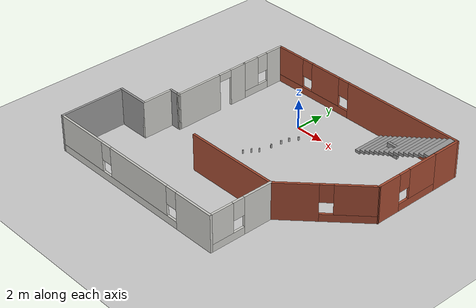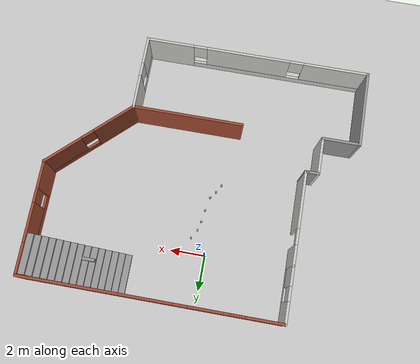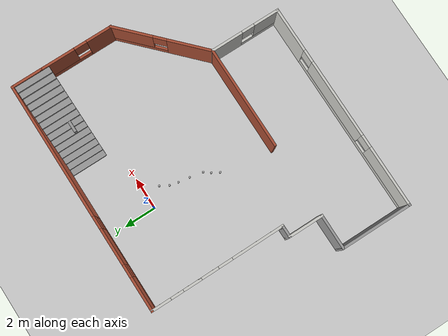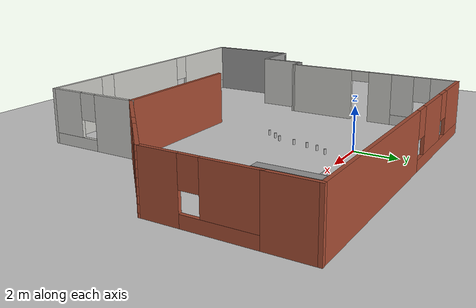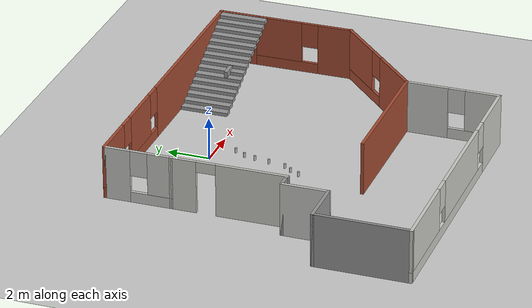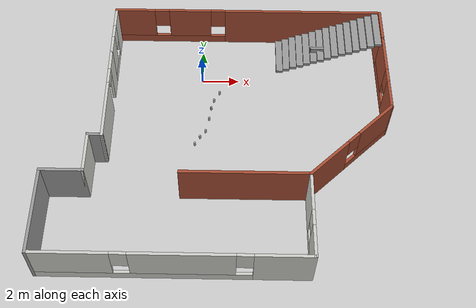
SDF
<sdf version="1.7">
 <world name="default">
  <model name="some_house">
   <pose>1.0882 -4.40068 0 0 -0 0</pose>
   <link name="Stairs_1">
    <visual name="Stairs_1_Visual_0">
     <pose>3.20774 6.21774 0.083333 0 -0 1.5708</pose>
     <geometry><box><size>2.24008 0.369439 0.166667</size></box></geometry>
     <material>
      <script><uri>file://media/materials/scripts/gazebo.material</uri><name>Gazebo/Grey</name></script>
      <ambient>1 1 1 1</ambient>
     </material>
     <meta><layer>0</layer></meta>
    </visual>
    <collision name="Stairs_1_Collision_0">
     <geometry><box><size>2.24008 0.369439 0.166667</size></box></geometry>
     <pose>3.20774 6.21774 0.083333 0 -0 1.5708</pose>
    </collision>
    <visual name="Stairs_1_Visual_1">
     <pose>3.57718 6.21774 0.25 0 -0 1.5708</pose>
     <geometry><box><size>2.24008 0.369439 0.166667</size></box></geometry>
     <material>
      <script><uri>file://media/materials/scripts/gazebo.material</uri><name>Gazebo/Grey</name></script>
      <ambient>1 1 1 1</ambient>
     </material>
     <meta><layer>0</layer></meta>
    </visual>
    <collision name="Stairs_1_Collision_1">
     <geometry><box><size>2.24008 0.369439 0.166667</size></box></geometry>
     <pose>3.57718 6.21774 0.25 0 -0 1.5708</pose>
    </collision>
    <visual name="Stairs_1_Visual_2">
     <pose>3.94662 6.21774 0.416667 0 -0 1.5708</pose>
     <geometry><box><size>2.24008 0.369439 0.166667</size></box></geometry>
     <material>
      <script><uri>file://media/materials/scripts/gazebo.material</uri><name>Gazebo/Grey</name></script>
      <ambient>1 1 1 1</ambient>
     </material>
     <meta><layer>0</layer></meta>
    </visual>
    <collision name="Stairs_1_Collision_2">
     <geometry><box><size>2.24008 0.369439 0.166667</size></box></geometry>
     <pose>3.94662 6.21774 0.416667 0 -0 1.5708</pose>
    </collision>
    <visual name="Stairs_1_Visual_3">
     <pose>4.31606 6.21774 0.583333 0 -0 1.5708</pose>
     <geometry><box><size>2.24008 0.369439 0.166667</size></box></geometry>
     <material>
      <script><uri>file://media/materials/scripts/gazebo.material</uri><name>Gazebo/Grey</name></script>
      <ambient>1 1 1 1</ambient>
     </material>
     <meta><layer>0</layer></meta>
    </visual>
    <collision name="Stairs_1_Collision_3">
     <geometry><box><size>2.24008 0.369439 0.166667</size></box></geometry>
     <pose>4.31606 6.21774 0.583333 0 -0 1.5708</pose>
    </collision>
    <visual name="Stairs_1_Visual_4">
     <pose>4.6855 6.21774 0.75 0 -0 1.5708</pose>
     <geometry><box><size>2.24008 0.369439 0.166667</size></box></geometry>
     <material>
      <script><uri>file://media/materials/scripts/gazebo.material</uri><name>Gazebo/Grey</name></script>
      <ambient>1 1 1 1</ambient>
     </material>
     <meta><layer>0</layer></meta>
    </visual>
    <collision name="Stairs_1_Collision_4">
     <geometry><box><size>2.24008 0.369439 0.166667</size></box></geometry>
     <pose>4.6855 6.21774 0.75 0 -0 1.5708</pose>
    </collision>
    <visual name="Stairs_1_Visual_5">
     <pose>5.05494 6.21774 0.916667 0 -0 1.5708</pose>
     <geometry><box><size>2.24008 0.369439 0.166667</size></box></geometry>
     <material>
      <script><uri>file://media/materials/scripts/gazebo.material</uri><name>Gazebo/Grey</name></script>
      <ambient>1 1 1 1</ambient>
     </material>
     <meta><layer>0</layer></meta>
    </visual>
    <collision name="Stairs_1_Collision_5">
     <geometry><box><size>2.24008 0.369439 0.166667</size></box></geometry>
     <pose>5.05494 6.21774 0.916667 0 -0 1.5708</pose>
    </collision>
    <visual name="Stairs_1_Visual_6">
     <pose>5.42438 6.21774 1.08333 0 -0 1.5708</pose>
     <geometry><box><size>2.24008 0.369439 0.166667</size></box></geometry>
     <material>
      <script><uri>file://media/materials/scripts/gazebo.material</uri><name>Gazebo/Grey</name></script>
      <ambient>1 1 1 1</ambient>
     </material>
     <meta><layer>0</layer></meta>
    </visual>
    <collision name="Stairs_1_Collision_6">
     <geometry><box><size>2.24008 0.369439 0.166667</size></box></geometry>
     <pose>5.42438 6.21774 1.08333 0 -0 1.5708</pose>
    </collision>
    <visual name="Stairs_1_Visual_7">
     <pose>5.79382 6.21774 1.25 0 -0 1.5708</pose>
     <geometry><box><size>2.24008 0.369439 0.166667</size></box></geometry>
     <material>
      <script><uri>file://media/materials/scripts/gazebo.material</uri><name>Gazebo/Grey</name></script>
      <ambient>1 1 1 1</ambient>
     </material>
     <meta><layer>0</layer></meta>
    </visual>
    <collision name="Stairs_1_Collision_7">
     <geometry><box><size>2.24008 0.369439 0.166667</size></box></geometry>
     <pose>5.79382 6.21774 1.25 0 -0 1.5708</pose>
    </collision>
    <visual name="Stairs_1_Visual_8">
     <pose>6.16326 6.21774 1.41667 0 -0 1.5708</pose>
     <geometry><box><size>2.24008 0.369439 0.166667</size></box></geometry>
     <material>
      <script><uri>file://media/materials/scripts/gazebo.material</uri><name>Gazebo/Grey</name></script>
      <ambient>1 1 1 1</ambient>
     </material>
     <meta><layer>0</layer></meta>
    </visual>
    <collision name="Stairs_1_Collision_8">
     <geometry><box><size>2.24008 0.369439 0.166667</size></box></geometry>
     <pose>6.16326 6.21774 1.41667 0 -0 1.5708</pose>
    </collision>
    <visual name="Stairs_1_Visual_9">
     <pose>6.5327 6.21774 1.58333 0 -0 1.5708</pose>
     <geometry><box><size>2.24008 0.369439 0.166667</size></box></geometry>
     <material>
      <script><uri>file://media/materials/scripts/gazebo.material</uri><name>Gazebo/Grey</name></script>
      <ambient>1 1 1 1</ambient>
     </material>
     <meta><layer>0</layer></meta>
    </visual>
    <collision name="Stairs_1_Collision_9">
     <geometry><box><size>2.24008 0.369439 0.166667</size></box></geometry>
     <pose>6.5327 6.21774 1.58333 0 -0 1.5708</pose>
    </collision>
    <visual name="Stairs_1_Visual_10">
     <pose>6.90214 6.21774 1.75 0 -0 1.5708</pose>
     <geometry><box><size>2.24008 0.369439 0.166667</size></box></geometry>
     <material>
      <script><uri>file://media/materials/scripts/gazebo.material</uri><name>Gazebo/Grey</name></script>
      <ambient>1 1 1 1</ambient>
     </material>
     <meta><layer>0</layer></meta>
    </visual>
    <collision name="Stairs_1_Collision_10">
     <geometry><box><size>2.24008 0.369439 0.166667</size></box></geometry>
     <pose>6.90214 6.21774 1.75 0 -0 1.5708</pose>
    </collision>
    <visual name="Stairs_1_Visual_11">
     <pose>7.27158 6.21774 1.91667 0 -0 1.5708</pose>
     <geometry><box><size>2.24008 0.369439 0.166667</size></box></geometry>
     <material>
      <script><uri>file://media/materials/scripts/gazebo.material</uri><name>Gazebo/Grey</name></script>
      <ambient>1 1 1 1</ambient>
     </material>
     <meta><layer>0</layer></meta>
    </visual>
    <collision name="Stairs_1_Collision_11">
     <geometry><box><size>2.24008 0.369439 0.166667</size></box></geometry>
     <pose>7.27158 6.21774 1.91667 0 -0 1.5708</pose>
    </collision>
    <visual name="Stairs_1_Visual_12">
     <pose>7.64102 6.21774 2.08333 0 -0 1.5708</pose>
     <geometry><box><size>2.24008 0.369439 0.166667</size></box></geometry>
     <material>
      <script><uri>file://media/materials/scripts/gazebo.material</uri><name>Gazebo/Grey</name></script>
      <ambient>1 1 1 1</ambient>
     </material>
     <meta><layer>0</layer></meta>
    </visual>
    <collision name="Stairs_1_Collision_12">
     <geometry><box><size>2.24008 0.369439 0.166667</size></box></geometry>
     <pose>7.64102 6.21774 2.08333 0 -0 1.5708</pose>
    </collision>
    <visual name="Stairs_1_Visual_13">
     <pose>8.01046 6.21774 2.25 0 -0 1.5708</pose>
     <geometry><box><size>2.24008 0.369439 0.166667</size></box></geometry>
     <material>
      <script><uri>file://media/materials/scripts/gazebo.material</uri><name>Gazebo/Grey</name></script>
      <ambient>1 1 1 1</ambient>
     </material>
     <meta><layer>0</layer></meta>
    </visual>
    <collision name="Stairs_1_Collision_13">
     <geometry><box><size>2.24008 0.369439 0.166667</size></box></geometry>
     <pose>8.01046 6.21774 2.25 0 -0 1.5708</pose>
    </collision>
    <visual name="Stairs_1_Visual_14">
     <pose>8.37989 6.21774 2.41667 0 -0 1.5708</pose>
     <geometry><box><size>2.24008 0.369439 0.166667</size></box></geometry>
     <material>
      <script><uri>file://media/materials/scripts/gazebo.material</uri><name>Gazebo/Grey</name></script>
      <ambient>1 1 1 1</ambient>
     </material>
     <meta><layer>0</layer></meta>
    </visual>
    <collision name="Stairs_1_Collision_14">
     <geometry><box><size>2.24008 0.369439 0.166667</size></box></geometry>
     <pose>8.37989 6.21774 2.41667 0 -0 1.5708</pose>
    </collision>
   </link>
   <link name="Wall_16">
    <pose>6.53448 -1.05 0 0 -0 0.760111</pose>
    <visual name="Wall_16_Visual_0">
     <pose>-1.66 0 1.25 0 -0 0</pose>
     <geometry><box><size>2.73288 0.15 2.5</size></box></geometry>
     <material>
      <script><uri>file://media/materials/scripts/gazebo.material</uri><name>Gazebo/Bricks</name></script>
      <ambient>1 1 1 1</ambient>
     </material>
     <meta><layer>0</layer></meta>
    </visual>
    <collision name="Wall_16_Collision_0">
     <geometry><box><size>2.73288 0.15 2.5</size></box></geometry>
     <pose>-1.66 0 1.25 0 -0 0</pose>
    </collision>
    <visual name="Wall_16_Visual_1">
     <pose>1.36644 0 0.25 0 -0 0</pose>
     <geometry><box><size>3.32001 0.15 0.5</size></box></geometry>
     <material>
      <script><uri>file://media/materials/scripts/gazebo.material</uri><name>Gazebo/Bricks</name></script>
      <ambient>1 1 1 1</ambient>
     </material>
     <meta><layer>0</layer></meta>
    </visual>
    <collision name="Wall_16_Collision_1">
     <geometry><box><size>3.32001 0.15 0.5</size></box></geometry>
     <pose>1.36644 0 0.25 0 -0 0</pose>
    </collision>
    <visual name="Wall_16_Visual_2">
     <pose>1.76644 0 1.5 0 -0 0</pose>
     <geometry><box><size>2.52 0.15 2</size></box></geometry>
     <material>
      <script><uri>file://media/materials/scripts/gazebo.material</uri><name>Gazebo/Bricks</name></script>
      <ambient>1 1 1 1</ambient>
     </material>
     <meta><layer>0</layer></meta>
    </visual>
    <collision name="Wall_16_Collision_2">
     <geometry><box><size>2.52 0.15 2</size></box></geometry>
     <pose>1.76644 0 1.5 0 -0 0</pose>
    </collision>
    <visual name="Wall_16_Visual_3">
     <pose>0.106438 0 1.9 0 -0 0</pose>
     <geometry><box><size>0.8 0.15 1.2</size></box></geometry>
     <material>
      <script><uri>file://media/materials/scripts/gazebo.material</uri><name>Gazebo/Bricks</name></script>
      <ambient>1 1 1 1</ambient>
     </material>
     <meta><layer>0</layer></meta>
    </visual>
    <collision name="Wall_16_Collision_3">
     <geometry><box><size>0.8 0.15 1.2</size></box></geometry>
     <pose>0.106438 0 1.9 0 -0 0</pose>
    </collision>
   </link>
   <link name="Wall_17">
    <pose>8.67357 3.28355 0 0 -0 1.5708</pose>
    <visual name="Wall_17_Visual_0">
     <pose>-1.53185 0 1.25 0 -0 0</pose>
     <geometry><box><size>1.68629 0.15 2.5</size></box></geometry>
     <material>
      <script><uri>file://media/materials/scripts/gazebo.material</uri><name>Gazebo/Bricks</name></script>
      <ambient>1 1 1 1</ambient>
     </material>
     <meta><layer>0</layer></meta>
    </visual>
    <collision name="Wall_17_Collision_0">
     <geometry><box><size>1.68629 0.15 2.5</size></box></geometry>
     <pose>-1.53185 0 1.25 0 -0 0</pose>
    </collision>
    <visual name="Wall_17_Visual_1">
     <pose>0.843146 0 0.25 0 -0 0</pose>
     <geometry><box><size>3.06371 0.15 0.5</size></box></geometry>
     <material>
      <script><uri>file://media/materials/scripts/gazebo.material</uri><name>Gazebo/Bricks</name></script>
      <ambient>1 1 1 1</ambient>
     </material>
     <meta><layer>0</layer></meta>
    </visual>
    <collision name="Wall_17_Collision_1">
     <geometry><box><size>3.06371 0.15 0.5</size></box></geometry>
     <pose>0.843146 0 0.25 0 -0 0</pose>
    </collision>
    <visual name="Wall_17_Visual_2">
     <pose>1.24315 0 1.5 0 -0 0</pose>
     <geometry><box><size>2.26371 0.15 2</size></box></geometry>
     <material>
      <script><uri>file://media/materials/scripts/gazebo.material</uri><name>Gazebo/Bricks</name></script>
      <ambient>1 1 1 1</ambient>
     </material>
     <meta><layer>0</layer></meta>
    </visual>
    <collision name="Wall_17_Collision_2">
     <geometry><box><size>2.26371 0.15 2</size></box></geometry>
     <pose>1.24315 0 1.5 0 -0 0</pose>
    </collision>
    <visual name="Wall_17_Visual_3">
     <pose>-0.288707 0 1.9 0 -0 0</pose>
     <geometry><box><size>0.8 0.15 1.2</size></box></geometry>
     <material>
      <script><uri>file://media/materials/scripts/gazebo.material</uri><name>Gazebo/Bricks</name></script>
      <ambient>1 1 1 1</ambient>
     </material>
     <meta><layer>0</layer></meta>
    </visual>
    <collision name="Wall_17_Collision_3">
     <geometry><box><size>0.8 0.15 1.2</size></box></geometry>
     <pose>-0.288707 0 1.9 0 -0 0</pose>
    </collision>
   </link>
   <link name="Wall_18">
    <collision name="Wall_18_Collision">
     <geometry><box><size>2 0.15 2.5</size></box></geometry>
     <pose>0 0 1.25 0 -0 0</pose>
    </collision>
    <visual name="Wall_18_Visual">
     <pose>0 0 1.25 0 -0 0</pose>
     <geometry><box><size>2 0.15 2.5</size></box></geometry>
     <material>
      <script><uri>file://media/materials/scripts/gazebo.material</uri><name>Gazebo/Bricks</name></script>
      <ambient>1 1 1 1</ambient>
     </material>
     <meta><layer>0</layer></meta>
    </visual>
    <pose>8.67357 6.50855 0 0 -0 1.5708</pose>
   </link>
   <link name="Wall_19">
    <pose>1.37357 7.43355 0 0 -0 3.14159</pose>
    <visual name="Wall_19_Visual_0">
     <pose>-3.05953 0 1.25 0 -0 0</pose>
     <geometry><box><size>8.63094 0.15 2.5</size></box></geometry>
     <material>
      <script><uri>file://media/materials/scripts/gazebo.material</uri><name>Gazebo/Bricks</name></script>
      <ambient>1 1 1 1</ambient>
     </material>
     <meta><layer>0</layer></meta>
    </visual>
    <collision name="Wall_19_Collision_0">
     <geometry><box><size>8.63094 0.15 2.5</size></box></geometry>
     <pose>-3.05953 0 1.25 0 -0 0</pose>
    </collision>
    <visual name="Wall_19_Visual_1">
     <pose>4.31547 0 0.25 0 -0 0</pose>
     <geometry><box><size>6.11906 0.15 0.5</size></box></geometry>
     <material>
      <script><uri>file://media/materials/scripts/gazebo.material</uri><name>Gazebo/Bricks</name></script>
      <ambient>1 1 1 1</ambient>
     </material>
     <meta><layer>0</layer></meta>
    </visual>
    <collision name="Wall_19_Collision_1">
     <geometry><box><size>6.11906 0.15 0.5</size></box></geometry>
     <pose>4.31547 0 0.25 0 -0 0</pose>
    </collision>
    <visual name="Wall_19_Visual_2">
     <pose>3.21359 0 1.5 0 -0 0</pose>
     <geometry><box><size>2.31531 0.15 2</size></box></geometry>
     <material>
      <script><uri>file://media/materials/scripts/gazebo.material</uri><name>Gazebo/Bricks</name></script>
      <ambient>1 1 1 1</ambient>
     </material>
     <meta><layer>0</layer></meta>
    </visual>
    <collision name="Wall_19_Collision_2">
     <geometry><box><size>2.31531 0.15 2</size></box></geometry>
     <pose>3.21359 0 1.5 0 -0 0</pose>
    </collision>
    <visual name="Wall_19_Visual_3">
     <pose>6.27312 0 1.5 0 -0 0</pose>
     <geometry><box><size>2.20375 0.15 2</size></box></geometry>
     <material>
      <script><uri>file://media/materials/scripts/gazebo.material</uri><name>Gazebo/Bricks</name></script>
      <ambient>1 1 1 1</ambient>
     </material>
     <meta><layer>0</layer></meta>
    </visual>
    <collision name="Wall_19_Collision_3">
     <geometry><box><size>2.20375 0.15 2</size></box></geometry>
     <pose>6.27312 0 1.5 0 -0 0</pose>
    </collision>
    <visual name="Wall_19_Visual_4">
     <pose>1.65594 0 1.9 0 -0 0</pose>
     <geometry><box><size>0.8 0.15 1.2</size></box></geometry>
     <material>
      <script><uri>file://media/materials/scripts/gazebo.material</uri><name>Gazebo/Bricks</name></script>
      <ambient>1 1 1 1</ambient>
     </material>
     <meta><layer>0</layer></meta>
    </visual>
    <collision name="Wall_19_Collision_4">
     <geometry><box><size>0.8 0.15 1.2</size></box></geometry>
     <pose>1.65594 0 1.9 0 -0 0</pose>
    </collision>
    <visual name="Wall_19_Visual_5">
     <pose>4.77125 0 1.9 0 -0 0</pose>
     <geometry><box><size>0.8 0.15 1.2</size></box></geometry>
     <material>
      <script><uri>file://media/materials/scripts/gazebo.material</uri><name>Gazebo/Bricks</name></script>
      <ambient>1 1 1 1</ambient>
     </material>
     <meta><layer>0</layer></meta>
    </visual>
    <collision name="Wall_19_Collision_5">
     <geometry><box><size>0.8 0.15 1.2</size></box></geometry>
     <pose>4.77125 0 1.9 0 -0 0</pose>
    </collision>
   </link>
   <link name="Wall_20">
    <pose>-5.92643 5.88355 0 0 -0 -1.5708</pose>
    <visual name="Wall_20_Visual_0">
     <pose>-0.984754 0 1.25 0 -0 0</pose>
     <geometry><box><size>1.28049 0.15 2.5</size></box></geometry>
     <material>
      <script><uri>file://media/materials/scripts/gazebo.material</uri><name>Gazebo/CeilingTiled</name></script>
      <ambient>0.921569 0.807843 0.615686 1</ambient>
     </material>
     <meta><layer>0</layer></meta>
    </visual>
    <collision name="Wall_20_Collision_0">
     <geometry><box><size>1.28049 0.15 2.5</size></box></geometry>
     <pose>-0.984754 0 1.25 0 -0 0</pose>
    </collision>
    <visual name="Wall_20_Visual_1">
     <pose>0.640246 0 0.25 0 -0 0</pose>
     <geometry><box><size>1.96951 0.15 0.5</size></box></geometry>
     <material>
      <script><uri>file://media/materials/scripts/gazebo.material</uri><name>Gazebo/CeilingTiled</name></script>
      <ambient>0.921569 0.807843 0.615686 1</ambient>
     </material>
     <meta><layer>0</layer></meta>
    </visual>
    <collision name="Wall_20_Collision_1">
     <geometry><box><size>1.96951 0.15 0.5</size></box></geometry>
     <pose>0.640246 0 0.25 0 -0 0</pose>
    </collision>
    <visual name="Wall_20_Visual_2">
     <pose>1.04025 0 1.5 0 -0 0</pose>
     <geometry><box><size>1.16951 0.15 2</size></box></geometry>
     <material>
      <script><uri>file://media/materials/scripts/gazebo.material</uri><name>Gazebo/CeilingTiled</name></script>
      <ambient>0.921569 0.807843 0.615686 1</ambient>
     </material>
     <meta><layer>0</layer></meta>
    </visual>
    <collision name="Wall_20_Collision_2">
     <geometry><box><size>1.16951 0.15 2</size></box></geometry>
     <pose>1.04025 0 1.5 0 -0 0</pose>
    </collision>
    <visual name="Wall_20_Visual_3">
     <pose>0.055492 0 1.9 0 -0 0</pose>
     <geometry><box><size>0.8 0.15 1.2</size></box></geometry>
     <material>
      <script><uri>file://media/materials/scripts/gazebo.material</uri><name>Gazebo/CeilingTiled</name></script>
      <ambient>0.921569 0.807843 0.615686 1</ambient>
     </material>
     <meta><layer>0</layer></meta>
    </visual>
    <collision name="Wall_20_Collision_3">
     <geometry><box><size>0.8 0.15 1.2</size></box></geometry>
     <pose>0.055492 0 1.9 0 -0 0</pose>
    </collision>
   </link>
   <link name="Wall_25">
    <collision name="Wall_25_Collision">
     <geometry><box><size>6.5 0.15 2.5</size></box></geometry>
     <pose>0 0 1.25 0 -0 0</pose>
    </collision>
    <visual name="Wall_25_Visual">
     <pose>0 0 1.25 0 -0 0</pose>
     <geometry><box><size>6.5 0.15 2.5</size></box></geometry>
     <material>
      <script><uri>file://media/materials/scripts/gazebo.material</uri><name>Gazebo/Bricks</name></script>
      <ambient>1 1 1 1</ambient>
     </material>
     <meta><layer>0</layer></meta>
    </visual>
    <pose>1.2204 -3.08355 0 0 -0 3.14159</pose>
   </link>
   <link name="Wall_32">
    <pose>4.3954 -5.25855 0 0 -0 -1.5708</pose>
    <visual name="Wall_32_Visual_0">
     <pose>-1.22831 0 1.25 0 -0 0</pose>
     <geometry><box><size>2.04338 0.15 2.5</size></box></geometry>
     <material>
      <script><uri>file://media/materials/scripts/gazebo.material</uri><name>Gazebo/CeilingTiled</name></script>
      <ambient>1 1 1 1</ambient>
     </material>
     <meta><layer>0</layer></meta>
    </visual>
    <collision name="Wall_32_Collision_0">
     <geometry><box><size>2.04338 0.15 2.5</size></box></geometry>
     <pose>-1.22831 0 1.25 0 -0 0</pose>
    </collision>
    <visual name="Wall_32_Visual_1">
     <pose>1.02169 0 0.25 0 -0 0</pose>
     <geometry><box><size>2.45662 0.15 0.5</size></box></geometry>
     <material>
      <script><uri>file://media/materials/scripts/gazebo.material</uri><name>Gazebo/CeilingTiled</name></script>
      <ambient>1 1 1 1</ambient>
     </material>
     <meta><layer>0</layer></meta>
    </visual>
    <collision name="Wall_32_Collision_1">
     <geometry><box><size>2.45662 0.15 0.5</size></box></geometry>
     <pose>1.02169 0 0.25 0 -0 0</pose>
    </collision>
    <visual name="Wall_32_Visual_2">
     <pose>1.42169 0 1.5 0 -0 0</pose>
     <geometry><box><size>1.65661 0.15 2</size></box></geometry>
     <material>
      <script><uri>file://media/materials/scripts/gazebo.material</uri><name>Gazebo/CeilingTiled</name></script>
      <ambient>1 1 1 1</ambient>
     </material>
     <meta><layer>0</layer></meta>
    </visual>
    <collision name="Wall_32_Collision_2">
     <geometry><box><size>1.65661 0.15 2</size></box></geometry>
     <pose>1.42169 0 1.5 0 -0 0</pose>
    </collision>
    <visual name="Wall_32_Visual_3">
     <pose>0.193385 0 1.9 0 -0 0</pose>
     <geometry><box><size>0.8 0.15 1.2</size></box></geometry>
     <material>
      <script><uri>file://media/materials/scripts/gazebo.material</uri><name>Gazebo/CeilingTiled</name></script>
      <ambient>1 1 1 1</ambient>
     </material>
     <meta><layer>0</layer></meta>
    </visual>
    <collision name="Wall_32_Collision_3">
     <geometry><box><size>0.8 0.15 1.2</size></box></geometry>
     <pose>0.193385 0 1.9 0 -0 0</pose>
    </collision>
   </link>
   <link name="Wall_33">
    <pose>-2.1546 -7.43355 0 0 -0 3.14159</pose>
    <visual name="Wall_33_Visual_0">
     <pose>-5.20373 0 1.25 0 -0 0</pose>
     <geometry><box><size>2.84254 0.15 2.5</size></box></geometry>
     <material>
      <script><uri>file://media/materials/scripts/gazebo.material</uri><name>Gazebo/CeilingTiled</name></script>
      <ambient>1 1 1 1</ambient>
     </material>
     <meta><layer>0</layer></meta>
    </visual>
    <collision name="Wall_33_Collision_0">
     <geometry><box><size>2.84254 0.15 2.5</size></box></geometry>
     <pose>-5.20373 0 1.25 0 -0 0</pose>
    </collision>
    <visual name="Wall_33_Visual_1">
     <pose>1.42127 0 0.25 0 -0 0</pose>
     <geometry><box><size>10.4075 0.15 0.5</size></box></geometry>
     <material>
      <script><uri>file://media/materials/scripts/gazebo.material</uri><name>Gazebo/CeilingTiled</name></script>
      <ambient>1 1 1 1</ambient>
     </material>
     <meta><layer>0</layer></meta>
    </visual>
    <collision name="Wall_33_Collision_1">
     <geometry><box><size>10.4075 0.15 0.5</size></box></geometry>
     <pose>1.42127 0 0.25 0 -0 0</pose>
    </collision>
    <visual name="Wall_33_Visual_2">
     <pose>-0.506978 0 1.5 0 -0 0</pose>
     <geometry><box><size>4.95096 0.15 2</size></box></geometry>
     <material>
      <script><uri>file://media/materials/scripts/gazebo.material</uri><name>Gazebo/CeilingTiled</name></script>
      <ambient>1 1 1 1</ambient>
     </material>
     <meta><layer>0</layer></meta>
    </visual>
    <collision name="Wall_33_Collision_2">
     <geometry><box><size>4.95096 0.15 2</size></box></geometry>
     <pose>-0.506978 0 1.5 0 -0 0</pose>
    </collision>
    <visual name="Wall_33_Visual_3">
     <pose>4.69675 0 1.5 0 -0 0</pose>
     <geometry><box><size>3.8565 0.15 2</size></box></geometry>
     <material>
      <script><uri>file://media/materials/scripts/gazebo.material</uri><name>Gazebo/CeilingTiled</name></script>
      <ambient>1 1 1 1</ambient>
     </material>
     <meta><layer>0</layer></meta>
    </visual>
    <collision name="Wall_33_Collision_3">
     <geometry><box><size>3.8565 0.15 2</size></box></geometry>
     <pose>4.69675 0 1.5 0 -0 0</pose>
    </collision>
    <visual name="Wall_33_Visual_4">
     <pose>-3.38246 0 1.9 0 -0 0</pose>
     <geometry><box><size>0.8 0.15 1.2</size></box></geometry>
     <material>
      <script><uri>file://media/materials/scripts/gazebo.material</uri><name>Gazebo/CeilingTiled</name></script>
      <ambient>1 1 1 1</ambient>
     </material>
     <meta><layer>0</layer></meta>
    </visual>
    <collision name="Wall_33_Collision_4">
     <geometry><box><size>0.8 0.15 1.2</size></box></geometry>
     <pose>-3.38246 0 1.9 0 -0 0</pose>
    </collision>
    <visual name="Wall_33_Visual_5">
     <pose>2.3685 0 1.9 0 -0 0</pose>
     <geometry><box><size>0.8 0.15 1.2</size></box></geometry>
     <material>
      <script><uri>file://media/materials/scripts/gazebo.material</uri><name>Gazebo/CeilingTiled</name></script>
      <ambient>1 1 1 1</ambient>
     </material>
     <meta><layer>0</layer></meta>
    </visual>
    <collision name="Wall_33_Collision_5">
     <geometry><box><size>0.8 0.15 1.2</size></box></geometry>
     <pose>2.3685 0 1.9 0 -0 0</pose>
    </collision>
   </link>
   <link name="Wall_34">
    <collision name="Wall_34_Collision">
     <geometry><box><size>4.5 0.15 2.5</size></box></geometry>
     <pose>0 0 1.25 0 -0 0</pose>
    </collision>
    <visual name="Wall_34_Visual">
     <pose>0 0 1.25 0 -0 0</pose>
     <geometry><box><size>4.5 0.15 2.5</size></box></geometry>
     <material>
      <script><uri>file://media/materials/scripts/gazebo.material</uri><name>Gazebo/Grey</name></script>
      <ambient>1 1 1 1</ambient>
     </material>
     <meta><layer>0</layer></meta>
    </visual>
    <pose>-8.7046 -5.25855 0 0 -0 1.5708</pose>
   </link>
   <link name="Wall_35">
    <collision name="Wall_35_Collision">
     <geometry><box><size>2.25 0.15 2.5</size></box></geometry>
     <pose>0 0 1.25 0 -0 0</pose>
    </collision>
    <visual name="Wall_35_Visual">
     <pose>0 0 1.25 0 -0 0</pose>
     <geometry><box><size>2.25 0.15 2.5</size></box></geometry>
     <material>
      <script><uri>file://media/materials/scripts/gazebo.material</uri><name>Gazebo/Grey</name></script>
      <ambient>1 1 1 1</ambient>
     </material>
     <meta><layer>0</layer></meta>
    </visual>
    <pose>-7.6546 -3.08355 0 0 -0 0</pose>
   </link>
   <link name="Wall_36">
    <collision name="Wall_36_Collision">
     <geometry><box><size>2.25 0.15 2.5</size></box></geometry>
     <pose>0 0 1.25 0 -0 0</pose>
    </collision>
    <visual name="Wall_36_Visual">
     <pose>0 0 1.25 0 -0 0</pose>
     <geometry><box><size>2.25 0.15 2.5</size></box></geometry>
     <material>
      <script><uri>file://media/materials/scripts/gazebo.material</uri><name>Gazebo/CeilingTiled</name></script>
      <ambient>0.921569 0.807843 0.615686 1</ambient>
     </material>
     <meta><layer>0</layer></meta>
    </visual>
    <pose>-6.6046 -2.03355 0 0 -0 1.5708</pose>
   </link>
   <link name="Wall_37">
    <collision name="Wall_37_Collision">
     <geometry><box><size>0.75 0.15 2.5</size></box></geometry>
     <pose>0 0 1.25 0 -0 0</pose>
    </collision>
    <visual name="Wall_37_Visual">
     <pose>0 0 1.25 0 -0 0</pose>
     <geometry><box><size>0.75 0.15 2.5</size></box></geometry>
     <material>
      <script><uri>file://media/materials/scripts/gazebo.material</uri><name>Gazebo/Grey</name></script>
      <ambient>1 1 1 1</ambient>
     </material>
     <meta><layer>0</layer></meta>
    </visual>
    <pose>-6.3046 -0.98355 0 0 -0 0</pose>
   </link>
   <link name="Wall_39">
    <collision name="Wall_39_Collision">
     <geometry><box><size>0.25 0.15 2.5</size></box></geometry>
     <pose>0 0 1.25 0 -0 0</pose>
    </collision>
    <visual name="Wall_39_Visual">
     <pose>0 0 1.25 0 -0 0</pose>
     <geometry><box><size>0.25 0.15 2.5</size></box></geometry>
     <material>
      <script><uri>file://media/materials/scripts/gazebo.material</uri><name>Gazebo/CeilingTiled</name></script>
      <ambient>0.921569 0.807843 0.615686 1</ambient>
     </material>
     <meta><layer>0</layer></meta>
    </visual>
    <pose>-5.9546 -0.98355 0 0 -0 0</pose>
   </link>
   <link name="Wall_40">
    <pose>-5.91552 1.675 0 0 -0 1.5749</pose>
    <visual name="Wall_40_Visual_0">
     <pose>-1.0692 0 1.25 0 -0 0</pose>
     <geometry><box><size>3.32875 0.15 2.5</size></box></geometry>
     <material>
      <script><uri>file://media/materials/scripts/gazebo.material</uri><name>Gazebo/CeilingTiled</name></script>
      <ambient>0.921569 0.807843 0.615686 1</ambient>
     </material>
     <meta><layer>0</layer></meta>
    </visual>
    <collision name="Wall_40_Collision_0">
     <geometry><box><size>3.32875 0.15 2.5</size></box></geometry>
     <pose>-1.0692 0 1.25 0 -0 0</pose>
    </collision>
    <visual name="Wall_40_Visual_1">
     <pose>2.11438 0 1.25 0 -0 0</pose>
     <geometry><box><size>1.23839 0.15 2.5</size></box></geometry>
     <material>
      <script><uri>file://media/materials/scripts/gazebo.material</uri><name>Gazebo/CeilingTiled</name></script>
      <ambient>0.921569 0.807843 0.615686 1</ambient>
     </material>
     <meta><layer>0</layer></meta>
    </visual>
    <collision name="Wall_40_Collision_1">
     <geometry><box><size>1.23839 0.15 2.5</size></box></geometry>
     <pose>2.11438 0 1.25 0 -0 0</pose>
    </collision>
    <visual name="Wall_40_Visual_2">
     <pose>1.04518 0 2.25 0 -0 0</pose>
     <geometry><box><size>0.9 0.15 0.5</size></box></geometry>
     <material>
      <script><uri>file://media/materials/scripts/gazebo.material</uri><name>Gazebo/CeilingTiled</name></script>
      <ambient>0.921569 0.807843 0.615686 1</ambient>
     </material>
     <meta><layer>0</layer></meta>
    </visual>
    <collision name="Wall_40_Collision_2">
     <geometry><box><size>0.9 0.15 0.5</size></box></geometry>
     <pose>1.04518 0 2.25 0 -0 0</pose>
    </collision>
   </link>
   <link name="Window_14">
    <collision name="Window_14_Collision">
     <geometry><box><size>0.8 0.17 0.8</size></box></geometry>
     <pose>0 0 0.4 0 -0 0</pose>
    </collision>
    <visual name="Window_14_Visual">
     <pose>0 0 0.4 0 -0 0</pose>
     <geometry><box><size>0.8 0.17 0.8</size></box></geometry>
     <material>
      <script><uri>file://media/materials/scripts/gazebo.material</uri><name>Gazebo/Grey</name></script>
     </material>
    </visual>
    <pose>5.29819 5.84106 0.5 0 -0 0</pose>
   </link>
   <static>1</static>
  </model>
  <model name="ground_plane">
   <static>1</static>
   <link name="link">
    <collision name="collision">
     <geometry><plane><normal>0 0 1</normal><size>100 100</size></plane></geometry>
     <surface>
      <contact><collide_bitmask>65535</collide_bitmask></contact>
      <friction><ode><mu>100</mu><mu2>50</mu2></ode></friction>
     </surface>
    </collision>
    <visual name="visual">
     <cast_shadows>0</cast_shadows>
     <geometry><plane><normal>0 0 1</normal><size>100 100</size></plane></geometry>
     <material>
      <script><uri>file://media/materials/scripts/gazebo.material</uri><name>Gazebo/Grey</name></script>
     </material>
    </visual>
   </link>
  </model>
  <model name="beer_clone_24">
   <link name="link">
    <pose>0 0 0.115 0 -0 0</pose>
    <inertial>
     <mass>0.39</mass>
     <inertia><ixx>0.00058</ixx><ixy>0</ixy><ixz>0</ixz><iyy>0.00058</iyy><iyz>0</iyz><izz>0.00019</izz></inertia>
    </inertial>
    <collision name="collision">
     <geometry><cylinder><radius>0.055</radius><length>0.23</length></cylinder></geometry>
    </collision>
    <visual name="visual">
     <geometry><cylinder><radius>0.055</radius><length>0.23</length></cylinder></geometry>
     <material>
      <script>
       <uri>model://beer/materials/scripts</uri>
       <uri>model://beer/materials/textures</uri>
       <name>Beer/Diffuse</name>
      </script>
     </material>
    </visual>
   </link>
   <pose>0.948589 -0.908925 0 0 -0 0</pose>
  </model>
  <model name="beer_clone_25">
   <link name="link">
    <pose>0 0 0.115 0 -0 0</pose>
    <inertial>
     <mass>0.39</mass>
     <inertia><ixx>0.00058</ixx><ixy>0</ixy><ixz>0</ixz><iyy>0.00058</iyy><iyz>0</iyz><izz>0.00019</izz></inertia>
    </inertial>
    <collision name="collision">
     <geometry><cylinder><radius>0.055</radius><length>0.23</length></cylinder></geometry>
    </collision>
    <visual name="visual">
     <geometry><cylinder><radius>0.055</radius><length>0.23</length></cylinder></geometry>
     <material>
      <script>
       <uri>model://beer/materials/scripts</uri>
       <uri>model://beer/materials/textures</uri>
       <name>Beer/Diffuse</name>
      </script>
     </material>
    </visual>
   </link>
   <pose>0.658754 -1.42656 0 0 -0 0</pose>
  </model>
  <model name="beer_clone_26">
   <link name="link">
    <pose>0 0 0.115 0 -0 0</pose>
    <inertial>
     <mass>0.39</mass>
     <inertia><ixx>0.00058</ixx><ixy>0</ixy><ixz>0</ixz><iyy>0.00058</iyy><iyz>0</iyz><izz>0.00019</izz></inertia>
    </inertial>
    <collision name="collision">
     <geometry><cylinder><radius>0.055</radius><length>0.23</length></cylinder></geometry>
    </collision>
    <visual name="visual">
     <geometry><cylinder><radius>0.055</radius><length>0.23</length></cylinder></geometry>
     <material>
      <script>
       <uri>model://beer/materials/scripts</uri>
       <uri>model://beer/materials/textures</uri>
       <name>Beer/Diffuse</name>
      </script>
     </material>
    </visual>
   </link>
   <pose>0.528178 -1.95725 0 0 -0 0</pose>
  </model>
  <model name="beer_clone_27">
   <link name="link">
    <pose>0 0 0.115 0 -0 0</pose>
    <inertial>
     <mass>0.39</mass>
     <inertia><ixx>0.00058</ixx><ixy>0</ixy><ixz>0</ixz><iyy>0.00058</iyy><iyz>0</iyz><izz>0.00019</izz></inertia>
    </inertial>
    <collision name="collision">
     <geometry><cylinder><radius>0.055</radius><length>0.23</length></cylinder></geometry>
    </collision>
    <visual name="visual">
     <geometry><cylinder><radius>0.055</radius><length>0.23</length></cylinder></geometry>
     <material>
      <script>
       <uri>model://beer/materials/scripts</uri>
       <uri>model://beer/materials/textures</uri>
       <name>Beer/Diffuse</name>
      </script>
     </material>
    </visual>
   </link>
   <pose>0.418289 -2.66152 0 0 -0 0</pose>
  </model>
  <model name="beer_clone_28">
   <link name="link">
    <pose>0 0 0.115 0 -0 0</pose>
    <inertial>
     <mass>0.39</mass>
     <inertia><ixx>0.00058</ixx><ixy>0</ixy><ixz>0</ixz><iyy>0.00058</iyy><iyz>0</iyz><izz>0.00019</izz></inertia>
    </inertial>
    <collision name="collision">
     <geometry><cylinder><radius>0.055</radius><length>0.23</length></cylinder></geometry>
    </collision>
    <visual name="visual">
     <geometry><cylinder><radius>0.055</radius><length>0.23</length></cylinder></geometry>
     <material>
      <script>
       <uri>model://beer/materials/scripts</uri>
       <uri>model://beer/materials/textures</uri>
       <name>Beer/Diffuse</name>
      </script>
     </material>
    </visual>
   </link>
   <pose>0.253525 -3.47533 0 0 -0 0</pose>
  </model>
  <model name="beer_clone_29">
   <link name="link">
    <pose>0 0 0.115 0 -0 0</pose>
    <inertial>
     <mass>0.39</mass>
     <inertia><ixx>0.00058</ixx><ixy>0</ixy><ixz>0</ixz><iyy>0.00058</iyy><iyz>0</iyz><izz>0.00019</izz></inertia>
    </inertial>
    <collision name="collision">
     <geometry><cylinder><radius>0.055</radius><length>0.23</length></cylinder></geometry>
    </collision>
    <visual name="visual">
     <geometry><cylinder><radius>0.055</radius><length>0.23</length></cylinder></geometry>
     <material>
      <script>
       <uri>model://beer/materials/scripts</uri>
       <uri>model://beer/materials/textures</uri>
       <name>Beer/Diffuse</name>
      </script>
     </material>
    </visual>
   </link>
   <pose>-0.034325 -3.85133 0 0 -0 0</pose>
  </model>
  <model name="beer_clone_30">
   <link name="link">
    <pose>0 0 0.115 0 -0 0</pose>
    <inertial>
     <mass>0.39</mass>
     <inertia><ixx>0.00058</ixx><ixy>0</ixy><ixz>0</ixz><iyy>0.00058</iyy><iyz>0</iyz><izz>0.00019</izz></inertia>
    </inertial>
    <collision name="collision">
     <geometry><cylinder><radius>0.055</radius><length>0.23</length></cylinder></geometry>
    </collision>
    <visual name="visual">
     <geometry><cylinder><radius>0.055</radius><length>0.23</length></cylinder></geometry>
     <material>
      <script>
       <uri>model://beer/materials/scripts</uri>
       <uri>model://beer/materials/textures</uri>
       <name>Beer/Diffuse</name>
      </script>
     </material>
    </visual>
   </link>
   <pose>-0.289593 -4.30093 0 0 -0 0</pose>
  </model>
 </world>
</sdf>
